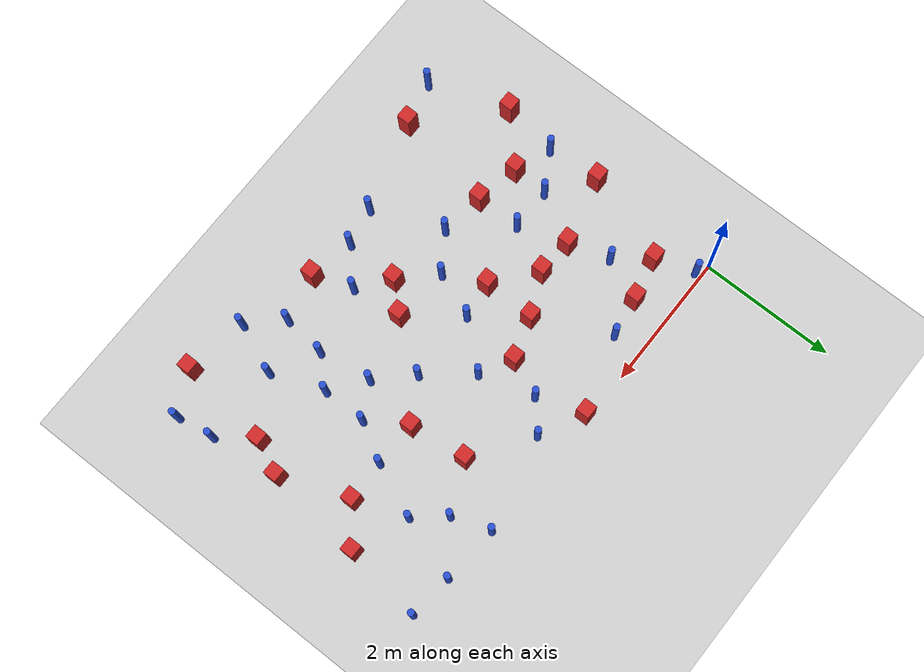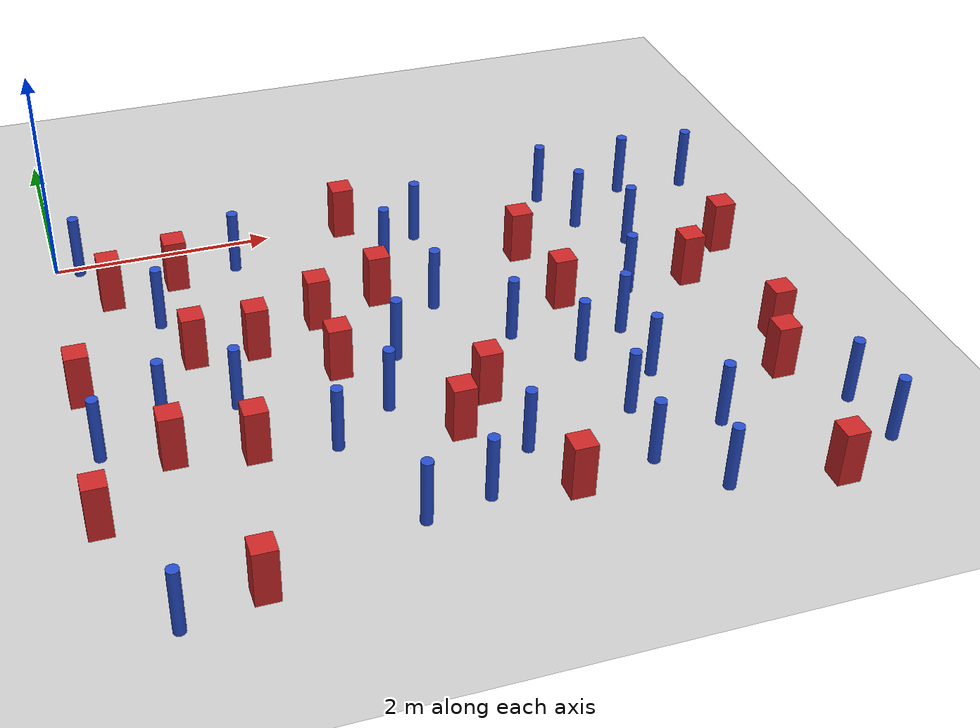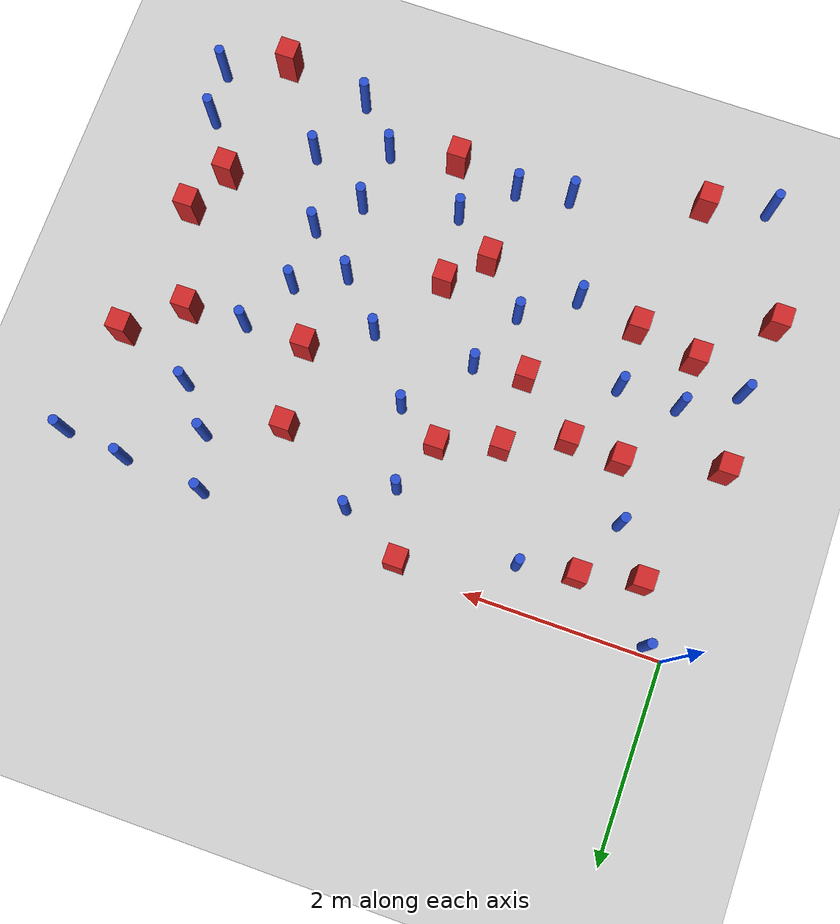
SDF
<sdf version="1.6">
 <world name="default">
  <model name="ground_plane">
   <static>1</static>
   <link name="link">
    <collision name="collision">
     <geometry><plane><normal>0 0 1</normal><size>100 100</size></plane></geometry>
     <surface><friction><ode><mu>100</mu><mu2>50</mu2></ode></friction></surface>
    </collision>
    <visual name="visual">
     <cast_shadows>0</cast_shadows>
     <geometry><plane><normal>0 0 1</normal><size>100 100</size></plane></geometry>
     <material>
      <ambient>1.0 1.0 1.0 1.0</ambient>
      <diffuse>0.8 0.8 0.8 1.0</diffuse>
      <specular>0.01 0.01 0.01 1.000000</specular>
     </material>
    </visual>
   </link>
  </model>
  <model name="NamedLocations">
   <static>true</static>
   <link name="DefaultStart"><pose>8.5 0 0 0 0 3.14</pose></link>
  </model>
  <model name="pole_obstacle7">
   <static>true</static>
   <pose>4.90631753604 -3.78050220913 7.38925637345e-09 -8.47170692798e-08 1.24976764937e-08 -1.74513093023e-07</pose>
   <link name="link">
    <pose>0 0 0.3 0 -0 0</pose>
    <inertial>
     <mass>1</mass>
     <inertia><ixx>0.145833</ixx><ixy>0</ixy><ixz>0</ixz><iyy>0.145833</iyy><iyz>0</iyz><izz>0.125</izz></inertia>
    </inertial>
    <collision name="collision">
     <geometry><cylinder><radius>0.05</radius><length>.6</length></cylinder></geometry>
    </collision>
    <visual name="visual">
     <geometry><cylinder><radius>0.05</radius><length>.6</length></cylinder></geometry>
     <material>
      <script><name>Gazebo/Blue</name><uri>file://media/materials/scripts/gazebo.material</uri></script>
     </material>
    </visual>
   </link>
  </model>
  <model name="pole_obstacle8">
   <static>true</static>
   <pose>2.63761670233 -2.16854106117 7.38925637345e-09 -8.47170692798e-08 1.24976764939e-08 -1.74513093025e-07</pose>
   <link name="link">
    <pose>0 0 0.3 0 -0 0</pose>
    <inertial>
     <mass>1</mass>
     <inertia><ixx>0.145833</ixx><ixy>0</ixy><ixz>0</ixz><iyy>0.145833</iyy><iyz>0</iyz><izz>0.125</izz></inertia>
    </inertial>
    <collision name="collision">
     <geometry><cylinder><radius>0.05</radius><length>.6</length></cylinder></geometry>
    </collision>
    <visual name="visual">
     <geometry><cylinder><radius>0.05</radius><length>.6</length></cylinder></geometry>
     <material>
      <script><name>Gazebo/Blue</name><uri>file://media/materials/scripts/gazebo.material</uri></script>
     </material>
    </visual>
   </link>
  </model>
  <model name="square_post_obstacle19">
   <static>true</static>
   <pose>5.90634652753 -2.80103733414 1.91545236811e-07 -7.35059704564e-06 1.12565212e-07 2.39332434364e-05</pose>
   <link name="link">
    <pose>0 0 0.25 0 -0 0</pose>
    <inertial>
     <mass>100</mass>
     <inertia>
      <ixx>0.166667</ixx>
      <ixy>0</ixy>
      <ixz>0</ixz>
      <iyy>0.166667</iyy>
      <iyz>0</iyz>
      <izz>0.166667</izz>
     </inertia>
    </inertial>
    <collision name="collision"><geometry><box><size>.2 .2 .5</size></box></geometry></collision>
    <visual name="visual">
     <geometry><box><size>.2 .2 .5</size></box></geometry>
     <material>
      <script><name>Gazebo/Red</name><uri>file://media/materials/scripts/gazebo.material</uri></script>
     </material>
    </visual>
   </link>
  </model>
  <model name="square_post_obstacle22">
   <static>true</static>
   <pose>-0.0848533377362 -3.55925744918 1.91545236811e-07 -7.35059704564e-06 1.12565212e-07 2.39332434364e-05</pose>
   <link name="link">
    <pose>0 0 0.25 0 -0 0</pose>
    <inertial>
     <mass>100</mass>
     <inertia>
      <ixx>0.166667</ixx>
      <ixy>0</ixy>
      <ixz>0</ixz>
      <iyy>0.166667</iyy>
      <iyz>0</iyz>
      <izz>0.166667</izz>
     </inertia>
    </inertial>
    <collision name="collision"><geometry><box><size>.2 .2 .5</size></box></geometry></collision>
    <visual name="visual">
     <geometry><box><size>.2 .2 .5</size></box></geometry>
     <material>
      <script><name>Gazebo/Red</name><uri>file://media/materials/scripts/gazebo.material</uri></script>
     </material>
    </visual>
   </link>
  </model>
  <model name="pole_obstacle19">
   <static>true</static>
   <pose>4.91948108078 -0.641241814981 7.38925637345e-09 -8.47170692799e-08 1.24976765038e-08 -1.74513093018e-07</pose>
   <link name="link">
    <pose>0 0 0.3 0 -0 0</pose>
    <inertial>
     <mass>1</mass>
     <inertia><ixx>0.145833</ixx><ixy>0</ixy><ixz>0</ixz><iyy>0.145833</iyy><iyz>0</iyz><izz>0.125</izz></inertia>
    </inertial>
    <collision name="collision">
     <geometry><cylinder><radius>0.05</radius><length>.6</length></cylinder></geometry>
    </collision>
    <visual name="visual">
     <geometry><cylinder><radius>0.05</radius><length>.6</length></cylinder></geometry>
     <material>
      <script><name>Gazebo/Blue</name><uri>file://media/materials/scripts/gazebo.material</uri></script>
     </material>
    </visual>
   </link>
  </model>
  <model name="square_post_obstacle30">
   <static>true</static>
   <pose>0.975652456838 -1.71907979939 1.91545236811e-07 -7.35059704564e-06 1.12565212e-07 2.39332434364e-05</pose>
   <link name="link">
    <pose>0 0 0.25 0 -0 0</pose>
    <inertial>
     <mass>100</mass>
     <inertia>
      <ixx>0.166667</ixx>
      <ixy>0</ixy>
      <ixz>0</ixz>
      <iyy>0.166667</iyy>
      <iyz>0</iyz>
      <izz>0.166667</izz>
     </inertia>
    </inertial>
    <collision name="collision"><geometry><box><size>.2 .2 .5</size></box></geometry></collision>
    <visual name="visual">
     <geometry><box><size>.2 .2 .5</size></box></geometry>
     <material>
      <script><name>Gazebo/Red</name><uri>file://media/materials/scripts/gazebo.material</uri></script>
     </material>
    </visual>
   </link>
  </model>
  <model name="pole_obstacle22">
   <static>true</static>
   <pose>4.26076564724 -3.41951765001 7.38925637345e-09 -8.47170692798e-08 1.24976764937e-08 -1.74513093023e-07</pose>
   <link name="link">
    <pose>0 0 0.3 0 -0 0</pose>
    <inertial>
     <mass>1</mass>
     <inertia><ixx>0.145833</ixx><ixy>0</ixy><ixz>0</ixz><iyy>0.145833</iyy><iyz>0</iyz><izz>0.125</izz></inertia>
    </inertial>
    <collision name="collision">
     <geometry><cylinder><radius>0.05</radius><length>.6</length></cylinder></geometry>
    </collision>
    <visual name="visual">
     <geometry><cylinder><radius>0.05</radius><length>.6</length></cylinder></geometry>
     <material>
      <script><name>Gazebo/Blue</name><uri>file://media/materials/scripts/gazebo.material</uri></script>
     </material>
    </visual>
   </link>
  </model>
  <model name="pole_obstacle29">
   <static>true</static>
   <pose>4.18487667094 -4.04678761162 7.38925637345e-09 -8.47170692796e-08 1.24976764791e-08 -1.74513093031e-07</pose>
   <link name="link">
    <pose>0 0 0.3 0 -0 0</pose>
    <inertial>
     <mass>1</mass>
     <inertia><ixx>0.145833</ixx><ixy>0</ixy><ixz>0</ixz><iyy>0.145833</iyy><iyz>0</iyz><izz>0.125</izz></inertia>
    </inertial>
    <collision name="collision">
     <geometry><cylinder><radius>0.05</radius><length>.6</length></cylinder></geometry>
    </collision>
    <visual name="visual">
     <geometry><cylinder><radius>0.05</radius><length>.6</length></cylinder></geometry>
     <material>
      <script><name>Gazebo/Blue</name><uri>file://media/materials/scripts/gazebo.material</uri></script>
     </material>
    </visual>
   </link>
  </model>
  <model name="pole_obstacle32">
   <static>true</static>
   <pose>4.63111429247 -3.01429948828 7.38925637345e-09 -8.47170692798e-08 1.24976764937e-08 -1.74513093023e-07</pose>
   <link name="link">
    <pose>0 0 0.3 0 -0 0</pose>
    <inertial>
     <mass>1</mass>
     <inertia><ixx>0.145833</ixx><ixy>0</ixy><ixz>0</ixz><iyy>0.145833</iyy><iyz>0</iyz><izz>0.125</izz></inertia>
    </inertial>
    <collision name="collision">
     <geometry><cylinder><radius>0.05</radius><length>.6</length></cylinder></geometry>
    </collision>
    <visual name="visual">
     <geometry><cylinder><radius>0.05</radius><length>.6</length></cylinder></geometry>
     <material>
      <script><name>Gazebo/Blue</name><uri>file://media/materials/scripts/gazebo.material</uri></script>
     </material>
    </visual>
   </link>
  </model>
  <model name="square_post_obstacle35">
   <static>true</static>
   <pose>1.03669604841 -0.514899763916 1.91545236811e-07 -7.35059704564e-06 1.12565212e-07 2.39332434364e-05</pose>
   <link name="link">
    <pose>0 0 0.25 0 -0 0</pose>
    <inertial>
     <mass>100</mass>
     <inertia>
      <ixx>0.166667</ixx>
      <ixy>0</ixy>
      <ixz>0</ixz>
      <iyy>0.166667</iyy>
      <iyz>0</iyz>
      <izz>0.166667</izz>
     </inertia>
    </inertial>
    <collision name="collision"><geometry><box><size>.2 .2 .5</size></box></geometry></collision>
    <visual name="visual">
     <geometry><box><size>.2 .2 .5</size></box></geometry>
     <material>
      <script><name>Gazebo/Red</name><uri>file://media/materials/scripts/gazebo.material</uri></script>
     </material>
    </visual>
   </link>
  </model>
  <model name="pole_obstacle41">
   <static>true</static>
   <pose>4.14564930695 -2.64414285255 7.38925637345e-09 -8.47170692798e-08 1.24976764937e-08 -1.74513093023e-07</pose>
   <link name="link">
    <pose>0 0 0.3 0 -0 0</pose>
    <inertial>
     <mass>1</mass>
     <inertia><ixx>0.145833</ixx><ixy>0</ixy><ixz>0</ixz><iyy>0.145833</iyy><iyz>0</iyz><izz>0.125</izz></inertia>
    </inertial>
    <collision name="collision">
     <geometry><cylinder><radius>0.05</radius><length>.6</length></cylinder></geometry>
    </collision>
    <visual name="visual">
     <geometry><cylinder><radius>0.05</radius><length>.6</length></cylinder></geometry>
     <material>
      <script><name>Gazebo/Blue</name><uri>file://media/materials/scripts/gazebo.material</uri></script>
     </material>
    </visual>
   </link>
  </model>
  <model name="pole_obstacle43">
   <static>true</static>
   <pose>1.20027835886 -2.42401723779 7.38925637345e-09 -8.47170692799e-08 1.24976765053e-08 -1.74513093017e-07</pose>
   <link name="link">
    <pose>0 0 0.3 0 -0 0</pose>
    <inertial>
     <mass>1</mass>
     <inertia><ixx>0.145833</ixx><ixy>0</ixy><ixz>0</ixz><iyy>0.145833</iyy><iyz>0</iyz><izz>0.125</izz></inertia>
    </inertial>
    <collision name="collision">
     <geometry><cylinder><radius>0.05</radius><length>.6</length></cylinder></geometry>
    </collision>
    <visual name="visual">
     <geometry><cylinder><radius>0.05</radius><length>.6</length></cylinder></geometry>
     <material>
      <script><name>Gazebo/Blue</name><uri>file://media/materials/scripts/gazebo.material</uri></script>
     </material>
    </visual>
   </link>
  </model>
  <model name="square_post_obstacle49">
   <static>true</static>
   <pose>-0.0180443997251 -1.96384648057 1.91545236811e-07 -7.35059704564e-06 1.12565212e-07 2.39332434364e-05</pose>
   <link name="link">
    <pose>0 0 0.25 0 -0 0</pose>
    <inertial>
     <mass>100</mass>
     <inertia>
      <ixx>0.166667</ixx>
      <ixy>0</ixy>
      <ixz>0</ixz>
      <iyy>0.166667</iyy>
      <iyz>0</iyz>
      <izz>0.166667</izz>
     </inertia>
    </inertial>
    <collision name="collision"><geometry><box><size>.2 .2 .5</size></box></geometry></collision>
    <visual name="visual">
     <geometry><box><size>.2 .2 .5</size></box></geometry>
     <material>
      <script><name>Gazebo/Red</name><uri>file://media/materials/scripts/gazebo.material</uri></script>
     </material>
    </visual>
   </link>
  </model>
  <model name="square_post_obstacle51">
   <static>true</static>
   <pose>2.11030266102 -2.22774805716 1.91545236811e-07 -7.35059704564e-06 1.12565212e-07 2.39332434364e-05</pose>
   <link name="link">
    <pose>0 0 0.25 0 -0 0</pose>
    <inertial>
     <mass>100</mass>
     <inertia>
      <ixx>0.166667</ixx>
      <ixy>0</ixy>
      <ixz>0</ixz>
      <iyy>0.166667</iyy>
      <iyz>0</iyz>
      <izz>0.166667</izz>
     </inertia>
    </inertial>
    <collision name="collision"><geometry><box><size>.2 .2 .5</size></box></geometry></collision>
    <visual name="visual">
     <geometry><box><size>.2 .2 .5</size></box></geometry>
     <material>
      <script><name>Gazebo/Red</name><uri>file://media/materials/scripts/gazebo.material</uri></script>
     </material>
    </visual>
   </link>
  </model>
  <model name="pole_obstacle66">
   <static>true</static>
   <pose>2.38373374157 -2.80900231063 7.38925637345e-09 -8.47170692798e-08 1.24976764939e-08 -1.74513093025e-07</pose>
   <link name="link">
    <pose>0 0 0.3 0 -0 0</pose>
    <inertial>
     <mass>1</mass>
     <inertia><ixx>0.145833</ixx><ixy>0</ixy><ixz>0</ixz><iyy>0.145833</iyy><iyz>0</iyz><izz>0.125</izz></inertia>
    </inertial>
    <collision name="collision">
     <geometry><cylinder><radius>0.05</radius><length>.6</length></cylinder></geometry>
    </collision>
    <visual name="visual">
     <geometry><cylinder><radius>0.05</radius><length>.6</length></cylinder></geometry>
     <material>
      <script><name>Gazebo/Blue</name><uri>file://media/materials/scripts/gazebo.material</uri></script>
     </material>
    </visual>
   </link>
  </model>
  <model name="pole_obstacle76">
   <static>true</static>
   <pose>6.04597257612 -3.81133300209 7.38925637345e-09 -8.47170692798e-08 1.24976764937e-08 -1.74513093023e-07</pose>
   <link name="link">
    <pose>0 0 0.3 0 -0 0</pose>
    <inertial>
     <mass>1</mass>
     <inertia><ixx>0.145833</ixx><ixy>0</ixy><ixz>0</ixz><iyy>0.145833</iyy><iyz>0</iyz><izz>0.125</izz></inertia>
    </inertial>
    <collision name="collision">
     <geometry><cylinder><radius>0.05</radius><length>.6</length></cylinder></geometry>
    </collision>
    <visual name="visual">
     <geometry><cylinder><radius>0.05</radius><length>.6</length></cylinder></geometry>
     <material>
      <script><name>Gazebo/Blue</name><uri>file://media/materials/scripts/gazebo.material</uri></script>
     </material>
    </visual>
   </link>
  </model>
  <model name="pole_obstacle79">
   <static>true</static>
   <pose>5.57681377029 -0.154421664191 7.38925637345e-09 -8.471706928e-08 1.24976765188e-08 -1.74513093011e-07</pose>
   <link name="link">
    <pose>0 0 0.3 0 -0 0</pose>
    <inertial>
     <mass>1</mass>
     <inertia><ixx>0.145833</ixx><ixy>0</ixy><ixz>0</ixz><iyy>0.145833</iyy><iyz>0</iyz><izz>0.125</izz></inertia>
    </inertial>
    <collision name="collision">
     <geometry><cylinder><radius>0.05</radius><length>.6</length></cylinder></geometry>
    </collision>
    <visual name="visual">
     <geometry><cylinder><radius>0.05</radius><length>.6</length></cylinder></geometry>
     <material>
      <script><name>Gazebo/Blue</name><uri>file://media/materials/scripts/gazebo.material</uri></script>
     </material>
    </visual>
   </link>
  </model>
  <model name="square_post_obstacle79">
   <static>true</static>
   <pose>1.51243727144 -1.75288358313 1.91545236811e-07 -7.35059704564e-06 1.12565212e-07 2.39332434364e-05</pose>
   <link name="link">
    <pose>0 0 0.25 0 -0 0</pose>
    <inertial>
     <mass>100</mass>
     <inertia>
      <ixx>0.166667</ixx>
      <ixy>0</ixy>
      <ixz>0</ixz>
      <iyy>0.166667</iyy>
      <iyz>0</iyz>
      <izz>0.166667</izz>
     </inertia>
    </inertial>
    <collision name="collision"><geometry><box><size>.2 .2 .5</size></box></geometry></collision>
    <visual name="visual">
     <geometry><box><size>.2 .2 .5</size></box></geometry>
     <material>
      <script><name>Gazebo/Red</name><uri>file://media/materials/scripts/gazebo.material</uri></script>
     </material>
    </visual>
   </link>
  </model>
  <model name="pole_obstacle80">
   <static>true</static>
   <pose>2.94915413976 -0.749864447352 7.38925637345e-09 -8.471706928e-08 1.24976765177e-08 -1.74513093012e-07</pose>
   <link name="link">
    <pose>0 0 0.3 0 -0 0</pose>
    <inertial>
     <mass>1</mass>
     <inertia><ixx>0.145833</ixx><ixy>0</ixy><ixz>0</ixz><iyy>0.145833</iyy><iyz>0</iyz><izz>0.125</izz></inertia>
    </inertial>
    <collision name="collision">
     <geometry><cylinder><radius>0.05</radius><length>.6</length></cylinder></geometry>
    </collision>
    <visual name="visual">
     <geometry><cylinder><radius>0.05</radius><length>.6</length></cylinder></geometry>
     <material>
      <script><name>Gazebo/Blue</name><uri>file://media/materials/scripts/gazebo.material</uri></script>
     </material>
    </visual>
   </link>
  </model>
  <model name="pole_obstacle83">
   <static>true</static>
   <pose>5.2732086351 -1.05977737226 7.38925637345e-09 -8.471706928e-08 1.24976765134e-08 -1.74513093015e-07</pose>
   <link name="link">
    <pose>0 0 0.3 0 -0 0</pose>
    <inertial>
     <mass>1</mass>
     <inertia><ixx>0.145833</ixx><ixy>0</ixy><ixz>0</ixz><iyy>0.145833</iyy><iyz>0</iyz><izz>0.125</izz></inertia>
    </inertial>
    <collision name="collision">
     <geometry><cylinder><radius>0.05</radius><length>.6</length></cylinder></geometry>
    </collision>
    <visual name="visual">
     <geometry><cylinder><radius>0.05</radius><length>.6</length></cylinder></geometry>
     <material>
      <script><name>Gazebo/Blue</name><uri>file://media/materials/scripts/gazebo.material</uri></script>
     </material>
    </visual>
   </link>
  </model>
  <model name="pole_obstacle108">
   <static>true</static>
   <pose>3.17861568543 -1.54394182729 7.38925637345e-09 -8.471706928e-08 1.24976765152e-08 -1.74513093012e-07</pose>
   <link name="link">
    <pose>0 0 0.3 0 -0 0</pose>
    <inertial>
     <mass>1</mass>
     <inertia><ixx>0.145833</ixx><ixy>0</ixy><ixz>0</ixz><iyy>0.145833</iyy><iyz>0</iyz><izz>0.125</izz></inertia>
    </inertial>
    <collision name="collision">
     <geometry><cylinder><radius>0.05</radius><length>.6</length></cylinder></geometry>
    </collision>
    <visual name="visual">
     <geometry><cylinder><radius>0.05</radius><length>.6</length></cylinder></geometry>
     <material>
      <script><name>Gazebo/Blue</name><uri>file://media/materials/scripts/gazebo.material</uri></script>
     </material>
    </visual>
   </link>
  </model>
  <model name="square_post_obstacle101">
   <static>true</static>
   <pose>1.21478674159 -3.07288940791 1.91545236811e-07 -7.35059704564e-06 1.12565212e-07 2.39332434364e-05</pose>
   <link name="link">
    <pose>0 0 0.25 0 -0 0</pose>
    <inertial>
     <mass>100</mass>
     <inertia>
      <ixx>0.166667</ixx>
      <ixy>0</ixy>
      <ixz>0</ixz>
      <iyy>0.166667</iyy>
      <iyz>0</iyz>
      <izz>0.166667</izz>
     </inertia>
    </inertial>
    <collision name="collision"><geometry><box><size>.2 .2 .5</size></box></geometry></collision>
    <visual name="visual">
     <geometry><box><size>.2 .2 .5</size></box></geometry>
     <material>
      <script><name>Gazebo/Red</name><uri>file://media/materials/scripts/gazebo.material</uri></script>
     </material>
    </visual>
   </link>
  </model>
  <model name="pole_obstacle118">
   <static>true</static>
   <pose>2.26415708411 -4.18285951976 7.38925637345e-09 -8.47170692798e-08 1.24976765033e-08 -1.74513093019e-07</pose>
   <link name="link">
    <pose>0 0 0.3 0 -0 0</pose>
    <inertial>
     <mass>1</mass>
     <inertia><ixx>0.145833</ixx><ixy>0</ixy><ixz>0</ixz><iyy>0.145833</iyy><iyz>0</iyz><izz>0.125</izz></inertia>
    </inertial>
    <collision name="collision">
     <geometry><cylinder><radius>0.05</radius><length>.6</length></cylinder></geometry>
    </collision>
    <visual name="visual">
     <geometry><cylinder><radius>0.05</radius><length>.6</length></cylinder></geometry>
     <material>
      <script><name>Gazebo/Blue</name><uri>file://media/materials/scripts/gazebo.material</uri></script>
     </material>
    </visual>
   </link>
  </model>
  <model name="square_post_obstacle103">
   <static>true</static>
   <pose>0.946153849446 -4.55325546971 1.91545236811e-07 -7.35059704564e-06 1.12565212e-07 2.39332434364e-05</pose>
   <link name="link">
    <pose>0 0 0.25 0 -0 0</pose>
    <inertial>
     <mass>100</mass>
     <inertia>
      <ixx>0.166667</ixx>
      <ixy>0</ixy>
      <ixz>0</ixz>
      <iyy>0.166667</iyy>
      <iyz>0</iyz>
      <izz>0.166667</izz>
     </inertia>
    </inertial>
    <collision name="collision"><geometry><box><size>.2 .2 .5</size></box></geometry></collision>
    <visual name="visual">
     <geometry><box><size>.2 .2 .5</size></box></geometry>
     <material>
      <script><name>Gazebo/Red</name><uri>file://media/materials/scripts/gazebo.material</uri></script>
     </material>
    </visual>
   </link>
  </model>
  <model name="square_post_obstacle106">
   <static>true</static>
   <pose>3.4852966131 -4.18772624645 1.91545236811e-07 -7.35059704564e-06 1.12565212e-07 2.39332434364e-05</pose>
   <link name="link">
    <pose>0 0 0.25 0 -0 0</pose>
    <inertial>
     <mass>100</mass>
     <inertia>
      <ixx>0.166667</ixx>
      <ixy>0</ixy>
      <ixz>0</ixz>
      <iyy>0.166667</iyy>
      <iyz>0</iyz>
      <izz>0.166667</izz>
     </inertia>
    </inertial>
    <collision name="collision"><geometry><box><size>.2 .2 .5</size></box></geometry></collision>
    <visual name="visual">
     <geometry><box><size>.2 .2 .5</size></box></geometry>
     <material>
      <script><name>Gazebo/Red</name><uri>file://media/materials/scripts/gazebo.material</uri></script>
     </material>
    </visual>
   </link>
  </model>
  <model name="pole_obstacle130">
   <static>true</static>
   <pose>1.60515735859 -0.420650376788 7.38925637345e-09 -8.47170692799e-08 1.24976765065e-08 -1.74513093017e-07</pose>
   <link name="link">
    <pose>0 0 0.3 0 -0 0</pose>
    <inertial>
     <mass>1</mass>
     <inertia><ixx>0.145833</ixx><ixy>0</ixy><ixz>0</ixz><iyy>0.145833</iyy><iyz>0</iyz><izz>0.125</izz></inertia>
    </inertial>
    <collision name="collision">
     <geometry><cylinder><radius>0.05</radius><length>.6</length></cylinder></geometry>
    </collision>
    <visual name="visual">
     <geometry><cylinder><radius>0.05</radius><length>.6</length></cylinder></geometry>
     <material>
      <script><name>Gazebo/Blue</name><uri>file://media/materials/scripts/gazebo.material</uri></script>
     </material>
    </visual>
   </link>
  </model>
  <model name="pole_obstacle132">
   <static>true</static>
   <pose>0.581238676838 -2.42169559718 7.38925637345e-09 -8.47170692799e-08 1.2497676509e-08 -1.74513093016e-07</pose>
   <link name="link">
    <pose>0 0 0.3 0 -0 0</pose>
    <inertial>
     <mass>1</mass>
     <inertia><ixx>0.145833</ixx><ixy>0</ixy><ixz>0</ixz><iyy>0.145833</iyy><iyz>0</iyz><izz>0.125</izz></inertia>
    </inertial>
    <collision name="collision">
     <geometry><cylinder><radius>0.05</radius><length>.6</length></cylinder></geometry>
    </collision>
    <visual name="visual">
     <geometry><cylinder><radius>0.05</radius><length>.6</length></cylinder></geometry>
     <material>
      <script><name>Gazebo/Blue</name><uri>file://media/materials/scripts/gazebo.material</uri></script>
     </material>
    </visual>
   </link>
  </model>
  <model name="square_post_obstacle120">
   <static>true</static>
   <pose>2.72257731375 -1.2853723948 1.91545236811e-07 -7.35059704564e-06 1.12565212e-07 2.39332434364e-05</pose>
   <link name="link">
    <pose>0 0 0.25 0 -0 0</pose>
    <inertial>
     <mass>100</mass>
     <inertia>
      <ixx>0.166667</ixx>
      <ixy>0</ixy>
      <ixz>0</ixz>
      <iyy>0.166667</iyy>
      <iyz>0</iyz>
      <izz>0.166667</izz>
     </inertia>
    </inertial>
    <collision name="collision"><geometry><box><size>.2 .2 .5</size></box></geometry></collision>
    <visual name="visual">
     <geometry><box><size>.2 .2 .5</size></box></geometry>
     <material>
      <script><name>Gazebo/Red</name><uri>file://media/materials/scripts/gazebo.material</uri></script>
     </material>
    </visual>
   </link>
  </model>
  <model name="square_post_obstacle121">
   <static>true</static>
   <pose>2.1188557939 -1.48004655245 1.91545236811e-07 -7.35059704564e-06 1.12565212e-07 2.39332434364e-05</pose>
   <link name="link">
    <pose>0 0 0.25 0 -0 0</pose>
    <inertial>
     <mass>100</mass>
     <inertia>
      <ixx>0.166667</ixx>
      <ixy>0</ixy>
      <ixz>0</ixz>
      <iyy>0.166667</iyy>
      <iyz>0</iyz>
      <izz>0.166667</izz>
     </inertia>
    </inertial>
    <collision name="collision"><geometry><box><size>.2 .2 .5</size></box></geometry></collision>
    <visual name="visual">
     <geometry><box><size>.2 .2 .5</size></box></geometry>
     <material>
      <script><name>Gazebo/Red</name><uri>file://media/materials/scripts/gazebo.material</uri></script>
     </material>
    </visual>
   </link>
  </model>
  <model name="pole_obstacle141">
   <static>true</static>
   <pose>3.68768075952 -2.17496522265 7.38925637345e-09 -8.47170692798e-08 1.24976764939e-08 -1.74513093025e-07</pose>
   <link name="link">
    <pose>0 0 0.3 0 -0 0</pose>
    <inertial>
     <mass>1</mass>
     <inertia><ixx>0.145833</ixx><ixy>0</ixy><ixz>0</ixz><iyy>0.145833</iyy><iyz>0</iyz><izz>0.125</izz></inertia>
    </inertial>
    <collision name="collision">
     <geometry><cylinder><radius>0.05</radius><length>.6</length></cylinder></geometry>
    </collision>
    <visual name="visual">
     <geometry><cylinder><radius>0.05</radius><length>.6</length></cylinder></geometry>
     <material>
      <script><name>Gazebo/Blue</name><uri>file://media/materials/scripts/gazebo.material</uri></script>
     </material>
    </visual>
   </link>
  </model>
  <model name="square_post_obstacle134">
   <static>true</static>
   <pose>6.05752403428 -1.37440389408 1.91545236811e-07 -7.35059704564e-06 1.12565212e-07 2.39332434364e-05</pose>
   <link name="link">
    <pose>0 0 0.25 0 -0 0</pose>
    <inertial>
     <mass>100</mass>
     <inertia>
      <ixx>0.166667</ixx>
      <ixy>0</ixy>
      <ixz>0</ixz>
      <iyy>0.166667</iyy>
      <iyz>0</iyz>
      <izz>0.166667</izz>
     </inertia>
    </inertial>
    <collision name="collision"><geometry><box><size>.2 .2 .5</size></box></geometry></collision>
    <visual name="visual">
     <geometry><box><size>.2 .2 .5</size></box></geometry>
     <material>
      <script><name>Gazebo/Red</name><uri>file://media/materials/scripts/gazebo.material</uri></script>
     </material>
    </visual>
   </link>
  </model>
  <model name="square_post_obstacle138">
   <static>true</static>
   <pose>2.8465478426 -3.27153181098 1.91545236811e-07 -7.35059704564e-06 1.12565212e-07 2.39332434364e-05</pose>
   <link name="link">
    <pose>0 0 0.25 0 -0 0</pose>
    <inertial>
     <mass>100</mass>
     <inertia>
      <ixx>0.166667</ixx>
      <ixy>0</ixy>
      <ixz>0</ixz>
      <iyy>0.166667</iyy>
      <iyz>0</iyz>
      <izz>0.166667</izz>
     </inertia>
    </inertial>
    <collision name="collision"><geometry><box><size>.2 .2 .5</size></box></geometry></collision>
    <visual name="visual">
     <geometry><box><size>.2 .2 .5</size></box></geometry>
     <material>
      <script><name>Gazebo/Red</name><uri>file://media/materials/scripts/gazebo.material</uri></script>
     </material>
    </visual>
   </link>
  </model>
  <model name="square_post_obstacle139">
   <static>true</static>
   <pose>5.68091593668 -3.29419547828 1.91545236811e-07 -7.35059704564e-06 1.12565212e-07 2.39332434364e-05</pose>
   <link name="link">
    <pose>0 0 0.25 0 -0 0</pose>
    <inertial>
     <mass>100</mass>
     <inertia>
      <ixx>0.166667</ixx>
      <ixy>0</ixy>
      <ixz>0</ixz>
      <iyy>0.166667</iyy>
      <iyz>0</iyz>
      <izz>0.166667</izz>
     </inertia>
    </inertial>
    <collision name="collision"><geometry><box><size>.2 .2 .5</size></box></geometry></collision>
    <visual name="visual">
     <geometry><box><size>.2 .2 .5</size></box></geometry>
     <material>
      <script><name>Gazebo/Red</name><uri>file://media/materials/scripts/gazebo.material</uri></script>
     </material>
    </visual>
   </link>
  </model>
  <model name="pole_obstacle149">
   <static>true</static>
   <pose>4.61176337076 -4.49693455446 7.38925637345e-09 -8.47170692796e-08 1.24976764786e-08 -1.74513093032e-07</pose>
   <link name="link">
    <pose>0 0 0.3 0 -0 0</pose>
    <inertial>
     <mass>1</mass>
     <inertia><ixx>0.145833</ixx><ixy>0</ixy><ixz>0</ixz><iyy>0.145833</iyy><iyz>0</iyz><izz>0.125</izz></inertia>
    </inertial>
    <collision name="collision">
     <geometry><cylinder><radius>0.05</radius><length>.6</length></cylinder></geometry>
    </collision>
    <visual name="visual">
     <geometry><cylinder><radius>0.05</radius><length>.6</length></cylinder></geometry>
     <material>
      <script><name>Gazebo/Blue</name><uri>file://media/materials/scripts/gazebo.material</uri></script>
     </material>
    </visual>
   </link>
  </model>
  <model name="square_post_obstacle143">
   <static>true</static>
   <pose>0.427103724488 -0.657092296151 1.91545236811e-07 -7.35059704564e-06 1.12565212e-07 2.39332434364e-05</pose>
   <link name="link">
    <pose>0 0 0.25 0 -0 0</pose>
    <inertial>
     <mass>100</mass>
     <inertia>
      <ixx>0.166667</ixx>
      <ixy>0</ixy>
      <ixz>0</ixz>
      <iyy>0.166667</iyy>
      <iyz>0</iyz>
      <izz>0.166667</izz>
     </inertia>
    </inertial>
    <collision name="collision"><geometry><box><size>.2 .2 .5</size></box></geometry></collision>
    <visual name="visual">
     <geometry><box><size>.2 .2 .5</size></box></geometry>
     <material>
      <script><name>Gazebo/Red</name><uri>file://media/materials/scripts/gazebo.material</uri></script>
     </material>
    </visual>
   </link>
  </model>
  <model name="square_post_obstacle147">
   <static>true</static>
   <pose>0.573940916881 -2.94407340508 1.91545236811e-07 -7.35059704564e-06 1.12565212e-07 2.39332434364e-05</pose>
   <link name="link">
    <pose>0 0 0.25 0 -0 0</pose>
    <inertial>
     <mass>100</mass>
     <inertia>
      <ixx>0.166667</ixx>
      <ixy>0</ixy>
      <ixz>0</ixz>
      <iyy>0.166667</iyy>
      <iyz>0</iyz>
      <izz>0.166667</izz>
     </inertia>
    </inertial>
    <collision name="collision"><geometry><box><size>.2 .2 .5</size></box></geometry></collision>
    <visual name="visual">
     <geometry><box><size>.2 .2 .5</size></box></geometry>
     <material>
      <script><name>Gazebo/Red</name><uri>file://media/materials/scripts/gazebo.material</uri></script>
     </material>
    </visual>
   </link>
  </model>
  <model name="square_post_obstacle151">
   <static>true</static>
   <pose>4.29020149955 -1.81164826642 1.91545236811e-07 -7.35059704564e-06 1.12565212e-07 2.39332434364e-05</pose>
   <link name="link">
    <pose>0 0 0.25 0 -0 0</pose>
    <inertial>
     <mass>100</mass>
     <inertia>
      <ixx>0.166667</ixx>
      <ixy>0</ixy>
      <ixz>0</ixz>
      <iyy>0.166667</iyy>
      <iyz>0</iyz>
      <izz>0.166667</izz>
     </inertia>
    </inertial>
    <collision name="collision"><geometry><box><size>.2 .2 .5</size></box></geometry></collision>
    <visual name="visual">
     <geometry><box><size>.2 .2 .5</size></box></geometry>
     <material>
      <script><name>Gazebo/Red</name><uri>file://media/materials/scripts/gazebo.material</uri></script>
     </material>
    </visual>
   </link>
  </model>
  <model name="square_post_obstacle153">
   <static>true</static>
   <pose>3.19526508961 -2.89899456489 1.91545236811e-07 -7.35059704564e-06 1.12565212e-07 2.39332434364e-05</pose>
   <link name="link">
    <pose>0 0 0.25 0 -0 0</pose>
    <inertial>
     <mass>100</mass>
     <inertia>
      <ixx>0.166667</ixx>
      <ixy>0</ixy>
      <ixz>0</ixz>
      <iyy>0.166667</iyy>
      <iyz>0</iyz>
      <izz>0.166667</izz>
     </inertia>
    </inertial>
    <collision name="collision"><geometry><box><size>.2 .2 .5</size></box></geometry></collision>
    <visual name="visual">
     <geometry><box><size>.2 .2 .5</size></box></geometry>
     <material>
      <script><name>Gazebo/Red</name><uri>file://media/materials/scripts/gazebo.material</uri></script>
     </material>
    </visual>
   </link>
  </model>
  <model name="pole_obstacle161">
   <static>true</static>
   <pose>3.35190117772 -0.395926143884 7.38925637345e-09 -8.471706928e-08 1.24976765172e-08 -1.74513093013e-07</pose>
   <link name="link">
    <pose>0 0 0.3 0 -0 0</pose>
    <inertial>
     <mass>1</mass>
     <inertia><ixx>0.145833</ixx><ixy>0</ixy><ixz>0</ixz><iyy>0.145833</iyy><iyz>0</iyz><izz>0.125</izz></inertia>
    </inertial>
    <collision name="collision">
     <geometry><cylinder><radius>0.05</radius><length>.6</length></cylinder></geometry>
    </collision>
    <visual name="visual">
     <geometry><cylinder><radius>0.05</radius><length>.6</length></cylinder></geometry>
     <material>
      <script><name>Gazebo/Blue</name><uri>file://media/materials/scripts/gazebo.material</uri></script>
     </material>
    </visual>
   </link>
  </model>
  <model name="square_post_obstacle155">
   <static>true</static>
   <pose>4.19007549645 -0.973340786361 1.91545236811e-07 -7.35059704564e-06 1.12565212e-07 2.39332434364e-05</pose>
   <link name="link">
    <pose>0 0 0.25 0 -0 0</pose>
    <inertial>
     <mass>100</mass>
     <inertia>
      <ixx>0.166667</ixx>
      <ixy>0</ixy>
      <ixz>0</ixz>
      <iyy>0.166667</iyy>
      <iyz>0</iyz>
      <izz>0.166667</izz>
     </inertia>
    </inertial>
    <collision name="collision"><geometry><box><size>.2 .2 .5</size></box></geometry></collision>
    <visual name="visual">
     <geometry><box><size>.2 .2 .5</size></box></geometry>
     <material>
      <script><name>Gazebo/Red</name><uri>file://media/materials/scripts/gazebo.material</uri></script>
     </material>
    </visual>
   </link>
  </model>
  <model name="pole_obstacle166">
   <static>true</static>
   <pose>4.73430729794 -0.090891711762 7.38925637345e-09 -8.47170692799e-08 1.24976765039e-08 -1.74513093019e-07</pose>
   <link name="link">
    <pose>0 0 0.3 0 -0 0</pose>
    <inertial>
     <mass>1</mass>
     <inertia><ixx>0.145833</ixx><ixy>0</ixy><ixz>0</ixz><iyy>0.145833</iyy><iyz>0</iyz><izz>0.125</izz></inertia>
    </inertial>
    <collision name="collision">
     <geometry><cylinder><radius>0.05</radius><length>.6</length></cylinder></geometry>
    </collision>
    <visual name="visual">
     <geometry><cylinder><radius>0.05</radius><length>.6</length></cylinder></geometry>
     <material>
      <script><name>Gazebo/Blue</name><uri>file://media/materials/scripts/gazebo.material</uri></script>
     </material>
    </visual>
   </link>
  </model>
  <model name="pole_obstacle173">
   <static>true</static>
   <pose>0.028117153581 -2.74814179347 7.38925637345e-09 -8.471706928e-08 1.24976765089e-08 -1.74513093014e-07</pose>
   <link name="link">
    <pose>0 0 0.3 0 -0 0</pose>
    <inertial>
     <mass>1</mass>
     <inertia><ixx>0.145833</ixx><ixy>0</ixy><ixz>0</ixz><iyy>0.145833</iyy><iyz>0</iyz><izz>0.125</izz></inertia>
    </inertial>
    <collision name="collision">
     <geometry><cylinder><radius>0.05</radius><length>.6</length></cylinder></geometry>
    </collision>
    <visual name="visual">
     <geometry><cylinder><radius>0.05</radius><length>.6</length></cylinder></geometry>
     <material>
      <script><name>Gazebo/Blue</name><uri>file://media/materials/scripts/gazebo.material</uri></script>
     </material>
    </visual>
   </link>
  </model>
  <model name="pole_obstacle176">
   <static>true</static>
   <pose>2.81883283495 -4.07413113477 7.38925637345e-09 -8.47170692798e-08 1.24976765033e-08 -1.74513093019e-07</pose>
   <link name="link">
    <pose>0 0 0.3 0 -0 0</pose>
    <inertial>
     <mass>1</mass>
     <inertia><ixx>0.145833</ixx><ixy>0</ixy><ixz>0</ixz><iyy>0.145833</iyy><iyz>0</iyz><izz>0.125</izz></inertia>
    </inertial>
    <collision name="collision">
     <geometry><cylinder><radius>0.05</radius><length>.6</length></cylinder></geometry>
    </collision>
    <visual name="visual">
     <geometry><cylinder><radius>0.05</radius><length>.6</length></cylinder></geometry>
     <material>
      <script><name>Gazebo/Blue</name><uri>file://media/materials/scripts/gazebo.material</uri></script>
     </material>
    </visual>
   </link>
  </model>
  <model name="square_post_obstacle172">
   <static>true</static>
   <pose>5.50601717351 -4.64646975409 1.91545236811e-07 -7.35059704564e-06 1.12565212e-07 2.39332434364e-05</pose>
   <link name="link">
    <pose>0 0 0.25 0 -0 0</pose>
    <inertial>
     <mass>100</mass>
     <inertia>
      <ixx>0.166667</ixx>
      <ixy>0</ixy>
      <ixz>0</ixz>
      <iyy>0.166667</iyy>
      <iyz>0</iyz>
      <izz>0.166667</izz>
     </inertia>
    </inertial>
    <collision name="collision"><geometry><box><size>.2 .2 .5</size></box></geometry></collision>
    <visual name="visual">
     <geometry><box><size>.2 .2 .5</size></box></geometry>
     <material>
      <script><name>Gazebo/Red</name><uri>file://media/materials/scripts/gazebo.material</uri></script>
     </material>
    </visual>
   </link>
  </model>
  <model name="pole_obstacle186">
   <static>true</static>
   <pose>0.303219551128 -4.71606463702 7.38925637345e-09 -8.471706928e-08 1.24976765079e-08 -1.74513093015e-07</pose>
   <link name="link">
    <pose>0 0 0.3 0 -0 0</pose>
    <inertial>
     <mass>1</mass>
     <inertia><ixx>0.145833</ixx><ixy>0</ixy><ixz>0</ixz><iyy>0.145833</iyy><iyz>0</iyz><izz>0.125</izz></inertia>
    </inertial>
    <collision name="collision">
     <geometry><cylinder><radius>0.05</radius><length>.6</length></cylinder></geometry>
    </collision>
    <visual name="visual">
     <geometry><cylinder><radius>0.05</radius><length>.6</length></cylinder></geometry>
     <material>
      <script><name>Gazebo/Blue</name><uri>file://media/materials/scripts/gazebo.material</uri></script>
     </material>
    </visual>
   </link>
  </model>
  <model name="pole_obstacle191">
   <static>true</static>
   <pose>0.207876450428 -0.0806433051238 7.38925637345e-09 -8.47170692798e-08 1.24976764988e-08 -1.7451309302e-07</pose>
   <link name="link">
    <pose>0 0 0.3 0 -0 0</pose>
    <inertial>
     <mass>1</mass>
     <inertia><ixx>0.145833</ixx><ixy>0</ixy><ixz>0</ixz><iyy>0.145833</iyy><iyz>0</iyz><izz>0.125</izz></inertia>
    </inertial>
    <collision name="collision">
     <geometry><cylinder><radius>0.05</radius><length>.6</length></cylinder></geometry>
    </collision>
    <visual name="visual">
     <geometry><cylinder><radius>0.05</radius><length>.6</length></cylinder></geometry>
     <material>
      <script><name>Gazebo/Blue</name><uri>file://media/materials/scripts/gazebo.material</uri></script>
     </material>
    </visual>
   </link>
  </model>
  <model name="square_post_obstacle185">
   <static>true</static>
   <pose>5.53839667315 -1.80156010285 1.91545236811e-07 -7.35059704564e-06 1.12565212e-07 2.39332434364e-05</pose>
   <link name="link">
    <pose>0 0 0.25 0 -0 0</pose>
    <inertial>
     <mass>100</mass>
     <inertia>
      <ixx>0.166667</ixx>
      <ixy>0</ixy>
      <ixz>0</ixz>
      <iyy>0.166667</iyy>
      <iyz>0</iyz>
      <izz>0.166667</izz>
     </inertia>
    </inertial>
    <collision name="collision"><geometry><box><size>.2 .2 .5</size></box></geometry></collision>
    <visual name="visual">
     <geometry><box><size>.2 .2 .5</size></box></geometry>
     <material>
      <script><name>Gazebo/Red</name><uri>file://media/materials/scripts/gazebo.material</uri></script>
     </material>
    </visual>
   </link>
  </model>
  <model name="square_post_obstacle186">
   <static>true</static>
   <pose>2.71533883523 -0.0769458745041 1.91545236811e-07 -7.35059704564e-06 1.12565212e-07 2.39332434364e-05</pose>
   <link name="link">
    <pose>0 0 0.25 0 -0 0</pose>
    <inertial>
     <mass>100</mass>
     <inertia>
      <ixx>0.166667</ixx>
      <ixy>0</ixy>
      <ixz>0</ixz>
      <iyy>0.166667</iyy>
      <iyz>0</iyz>
      <izz>0.166667</izz>
     </inertia>
    </inertial>
    <collision name="collision"><geometry><box><size>.2 .2 .5</size></box></geometry></collision>
    <visual name="visual">
     <geometry><box><size>.2 .2 .5</size></box></geometry>
     <material>
      <script><name>Gazebo/Red</name><uri>file://media/materials/scripts/gazebo.material</uri></script>
     </material>
    </visual>
   </link>
  </model>
  <model name="pole_obstacle193">
   <static>true</static>
   <pose>4.63818394807 -2.37043989332 7.38925637345e-09 -8.47170692798e-08 1.24976764937e-08 -1.74513093023e-07</pose>
   <link name="link">
    <pose>0 0 0.3 0 -0 0</pose>
    <inertial>
     <mass>1</mass>
     <inertia><ixx>0.145833</ixx><ixy>0</ixy><ixz>0</ixz><iyy>0.145833</iyy><iyz>0</iyz><izz>0.125</izz></inertia>
    </inertial>
    <collision name="collision">
     <geometry><cylinder><radius>0.05</radius><length>.6</length></cylinder></geometry>
    </collision>
    <visual name="visual">
     <geometry><cylinder><radius>0.05</radius><length>.6</length></cylinder></geometry>
     <material>
      <script><name>Gazebo/Blue</name><uri>file://media/materials/scripts/gazebo.material</uri></script>
     </material>
    </visual>
   </link>
  </model>
  <model name="pole_obstacle203">
   <static>true</static>
   <pose>4.94416748179 -1.82562644672 7.38925637345e-09 -8.471706928e-08 1.24976765134e-08 -1.74513093015e-07</pose>
   <link name="link">
    <pose>0 0 0.3 0 -0 0</pose>
    <inertial>
     <mass>1</mass>
     <inertia><ixx>0.145833</ixx><ixy>0</ixy><ixz>0</ixz><iyy>0.145833</iyy><iyz>0</iyz><izz>0.125</izz></inertia>
    </inertial>
    <collision name="collision">
     <geometry><cylinder><radius>0.05</radius><length>.6</length></cylinder></geometry>
    </collision>
    <visual name="visual">
     <geometry><cylinder><radius>0.05</radius><length>.6</length></cylinder></geometry>
     <material>
      <script><name>Gazebo/Blue</name><uri>file://media/materials/scripts/gazebo.material</uri></script>
     </material>
    </visual>
   </link>
  </model>
  <model name="pole_obstacle213">
   <static>true</static>
   <pose>6.12474442968 -4.35062818629 7.38925637345e-09 -8.47170692796e-08 1.24976764786e-08 -1.74513093032e-07</pose>
   <link name="link">
    <pose>0 0 0.3 0 -0 0</pose>
    <inertial>
     <mass>1</mass>
     <inertia><ixx>0.145833</ixx><ixy>0</ixy><ixz>0</ixz><iyy>0.145833</iyy><iyz>0</iyz><izz>0.125</izz></inertia>
    </inertial>
    <collision name="collision">
     <geometry><cylinder><radius>0.05</radius><length>.6</length></cylinder></geometry>
    </collision>
    <visual name="visual">
     <geometry><cylinder><radius>0.05</radius><length>.6</length></cylinder></geometry>
     <material>
      <script><name>Gazebo/Blue</name><uri>file://media/materials/scripts/gazebo.material</uri></script>
     </material>
    </visual>
   </link>
  </model>
  <model name="pole_obstacle223">
   <static>true</static>
   <pose>0.787107363964 -1.11918991603 7.38925637345e-09 -8.47170692799e-08 1.24976765033e-08 -1.7451309302e-07</pose>
   <link name="link">
    <pose>0 0 0.3 0 -0 0</pose>
    <inertial>
     <mass>1</mass>
     <inertia><ixx>0.145833</ixx><ixy>0</ixy><ixz>0</ixz><iyy>0.145833</iyy><iyz>0</iyz><izz>0.125</izz></inertia>
    </inertial>
    <collision name="collision">
     <geometry><cylinder><radius>0.05</radius><length>.6</length></cylinder></geometry>
    </collision>
    <visual name="visual">
     <geometry><cylinder><radius>0.05</radius><length>.6</length></cylinder></geometry>
     <material>
      <script><name>Gazebo/Blue</name><uri>file://media/materials/scripts/gazebo.material</uri></script>
     </material>
    </visual>
   </link>
  </model>
  <model name="pole_obstacle225">
   <static>true</static>
   <pose>1.8549343865 -3.16887249107 7.38925637345e-09 -8.47170692799e-08 1.24976765053e-08 -1.74513093017e-07</pose>
   <link name="link">
    <pose>0 0 0.3 0 -0 0</pose>
    <inertial>
     <mass>1</mass>
     <inertia><ixx>0.145833</ixx><ixy>0</ixy><ixz>0</ixz><iyy>0.145833</iyy><iyz>0</iyz><izz>0.125</izz></inertia>
    </inertial>
    <collision name="collision">
     <geometry><cylinder><radius>0.05</radius><length>.6</length></cylinder></geometry>
    </collision>
    <visual name="visual">
     <geometry><cylinder><radius>0.05</radius><length>.6</length></cylinder></geometry>
     <material>
      <script><name>Gazebo/Blue</name><uri>file://media/materials/scripts/gazebo.material</uri></script>
     </material>
    </visual>
   </link>
  </model>
  <model name="pole_obstacle226">
   <static>true</static>
   <pose>6.2275758116 -0.224802459735 7.38925637345e-09 -8.471706928e-08 1.24976765089e-08 -1.74513093017e-07</pose>
   <link name="link">
    <pose>0 0 0.3 0 -0 0</pose>
    <inertial>
     <mass>1</mass>
     <inertia><ixx>0.145833</ixx><ixy>0</ixy><ixz>0</ixz><iyy>0.145833</iyy><iyz>0</iyz><izz>0.125</izz></inertia>
    </inertial>
    <collision name="collision">
     <geometry><cylinder><radius>0.05</radius><length>.6</length></cylinder></geometry>
    </collision>
    <visual name="visual">
     <geometry><cylinder><radius>0.05</radius><length>.6</length></cylinder></geometry>
     <material>
      <script><name>Gazebo/Blue</name><uri>file://media/materials/scripts/gazebo.material</uri></script>
     </material>
    </visual>
   </link>
  </model>
  <model name="pole_obstacle237">
   <static>true</static>
   <pose>3.28768000957 -3.63257997922 7.38925637345e-09 -8.47170692798e-08 1.24976764939e-08 -1.74513093025e-07</pose>
   <link name="link">
    <pose>0 0 0.3 0 -0 0</pose>
    <inertial>
     <mass>1</mass>
     <inertia><ixx>0.145833</ixx><ixy>0</ixy><ixz>0</ixz><iyy>0.145833</iyy><iyz>0</iyz><izz>0.125</izz></inertia>
    </inertial>
    <collision name="collision">
     <geometry><cylinder><radius>0.05</radius><length>.6</length></cylinder></geometry>
    </collision>
    <visual name="visual">
     <geometry><cylinder><radius>0.05</radius><length>.6</length></cylinder></geometry>
     <material>
      <script><name>Gazebo/Blue</name><uri>file://media/materials/scripts/gazebo.material</uri></script>
     </material>
    </visual>
   </link>
  </model>
 </world>
</sdf>
